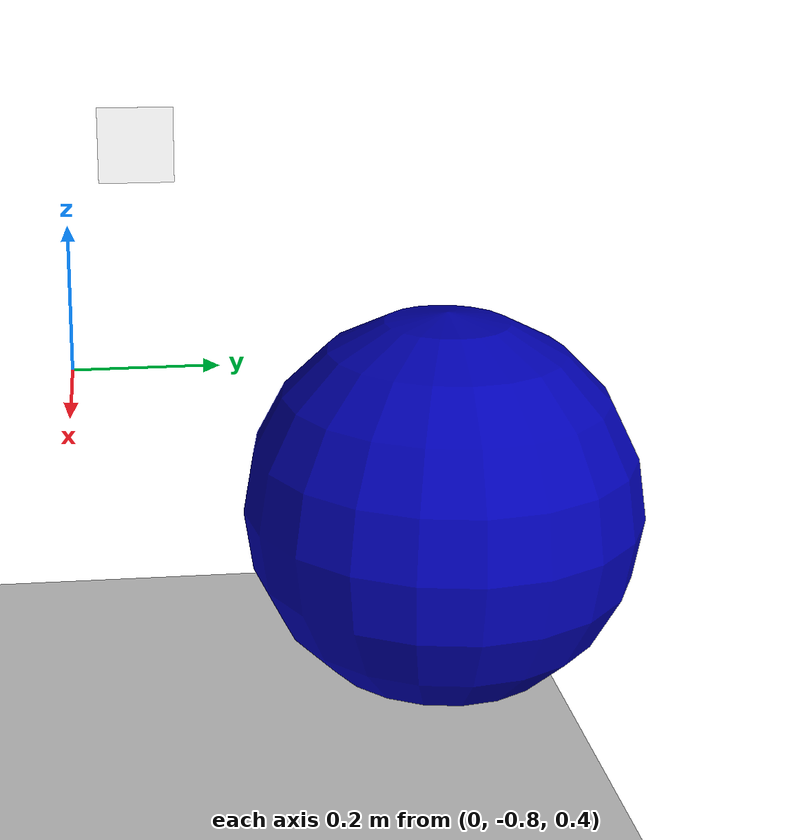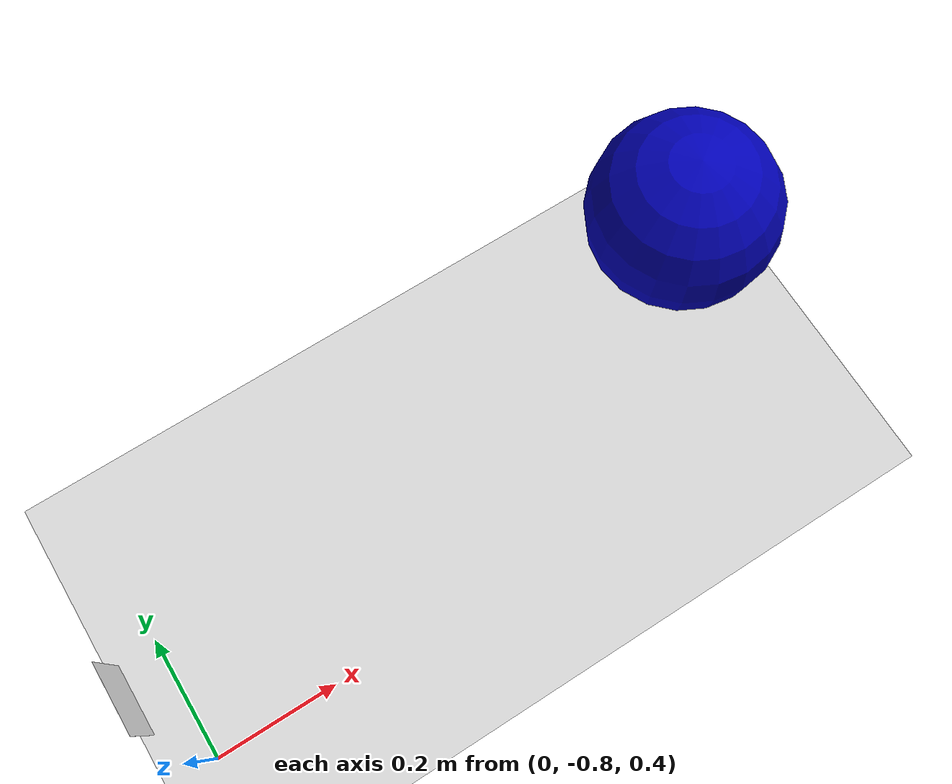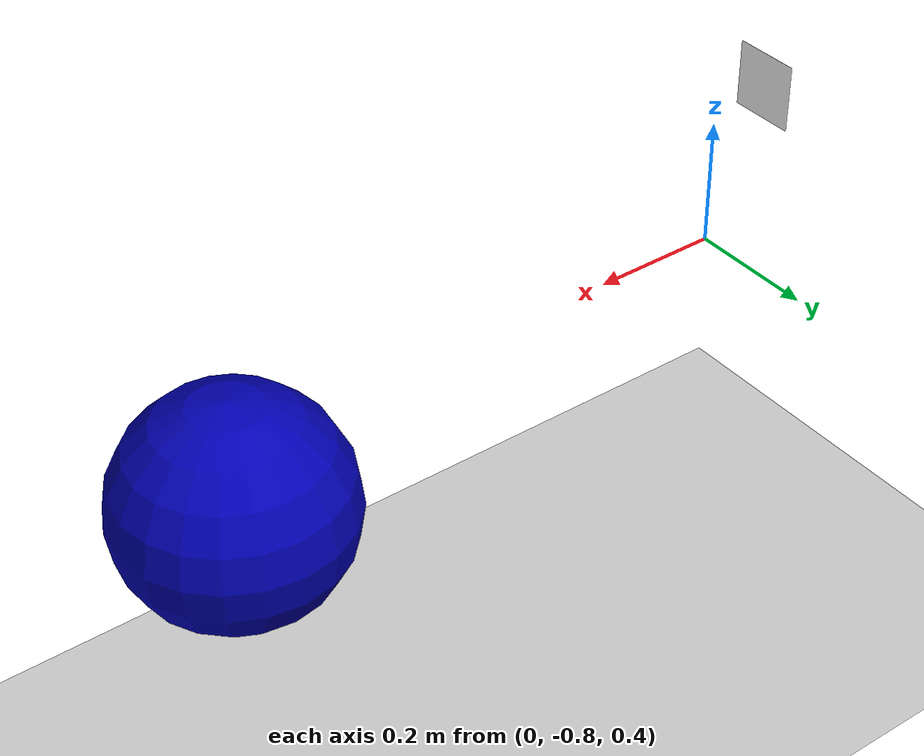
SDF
<?xml version="1.0" ?>
<sdf version="1.4">
  <!-- We use a custom world for the rrbot so that the camera angle is launched correctly -->

  <world name="default">
    <!-- Included light -->
    <include>
      <uri>https://fuel.gazebosim.org/1.0/OpenRobotics/models/Sun</uri>
    </include>

    <!-- Included model -->
    <include>
      <uri>https://fuel.gazebosim.org/1.0/OpenRobotics/models/Ground Plane</uri>
    </include>

    <include>
      <uri>
        model://arucotag
      </uri>
      <name>arucotag</name>
      <pose>0 -0.707 0.707 0 1.57 0</pose>
    </include>

	<include>
	<uri>model://bluesphere</uri>
	<name>bluesphere</name>
	</include>

    <gravity>0 0 0</gravity>

    <!-- Focus camera on tall pendulum -->
    <gui fullscreen='0'>
      <camera name='user_camera'>
        <pose>4.927360 -4.376610 3.740080 0.000000 0.275643 2.356190</pose>
        <view_controller>orbit</view_controller>
      </camera>
    </gui>

  </world>
</sdf>

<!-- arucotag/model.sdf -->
<sdf version='1.9'>
  <model name='arucotag'>
    <static>true</static>
    <pose>0 0 0.001 0 0 0</pose>
    <link name='base'>
      <visual name='base_visual'>
        <geometry>
          <plane>
            <normal>0 0 1</normal>
            <size>0.1 0.1</size>
          </plane>
        </geometry>
        <material>
          <diffuse>1 1 1 1</diffuse>
          <specular>0.4 0.4 0.4 1</specular>
          <pbr>
            <metal>
              <albedo_map>model://arucotag/aruco-201.png</albedo_map>
            </metal>
          </pbr>
        </material>
      </visual>
    </link>
  </model>
</sdf>

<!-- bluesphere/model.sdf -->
<sdf version='1.9'>

    <model name='bluesphere'>
	  <pose>1 -0.5 0.6 0 0 0</pose>
	  <link name="sphere_link">
	    <inertial>
	      <mass>1.0</mass>
	      <inertia>
		<ixx>0.01</ixx>
		<iyy>0.01</iyy>
		<izz>0.01</izz>
		<ixy>0.0</ixy>
		<ixz>0.0</ixz>
		<iyz>0.0</iyz>
	      </inertia>
	    </inertial>
	    <collision name='sphere_collision'>
	      <geometry>
		<sphere>
		  <radius>0.15</radius>
		</sphere>
	      </geometry>
	    </collision>
	    <visual name='sphere_visual'>
	      <geometry>
		<sphere>
		  <radius>0.15</radius>
		</sphere>
	      </geometry>
	      <material>
		<ambient>0.0 0.0 0.3 1</ambient>
		<diffuse>0.0 0.0 0.7 1</diffuse>
		<specular>0.5 0.5 0.5 1</specular>
	      </material>
	    </visual>
	  </link>
	  <static>false</static> <!-- Specifica che la sfera non è statica (può muoversi) -->
	</model>
</sdf>
